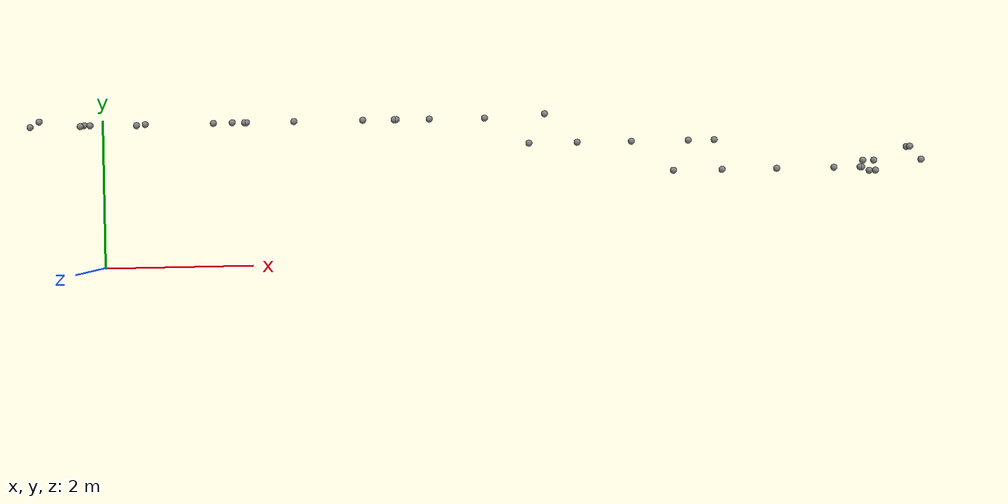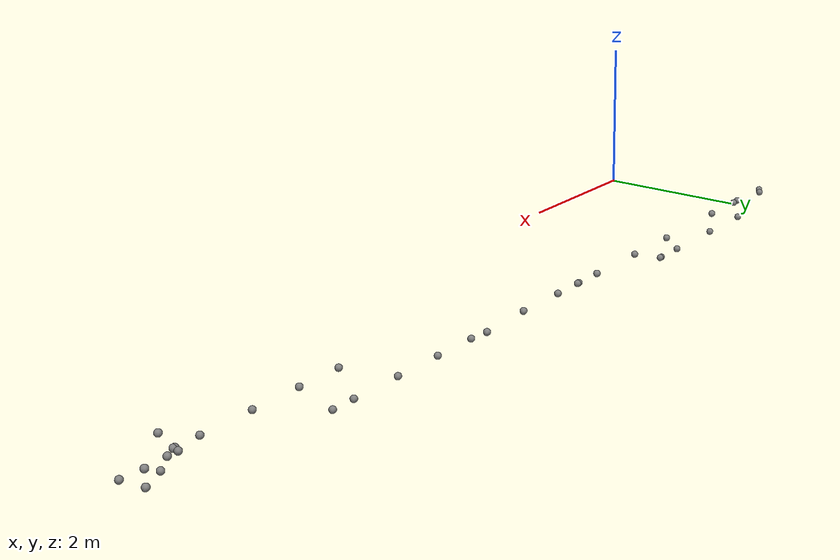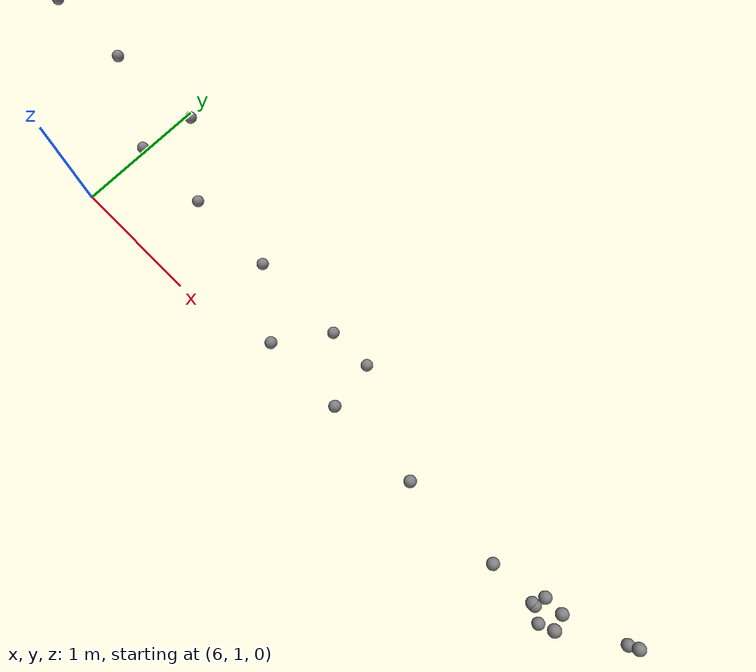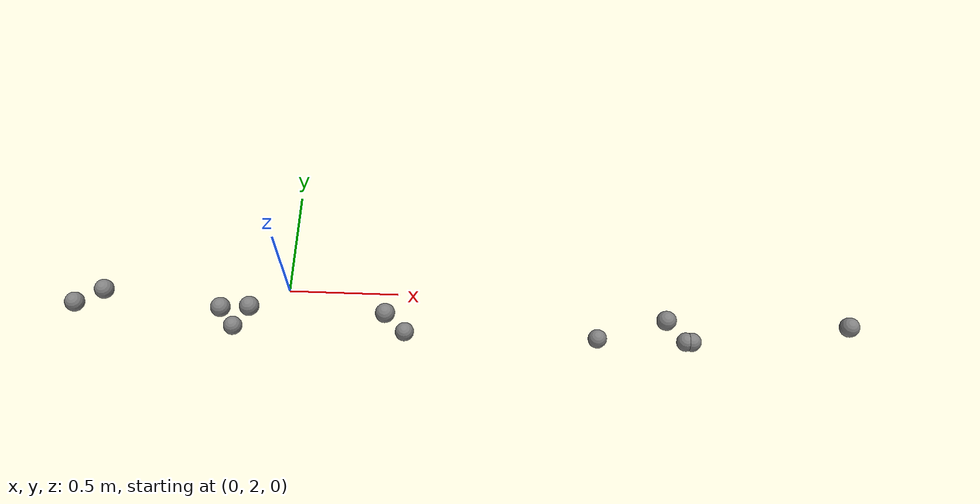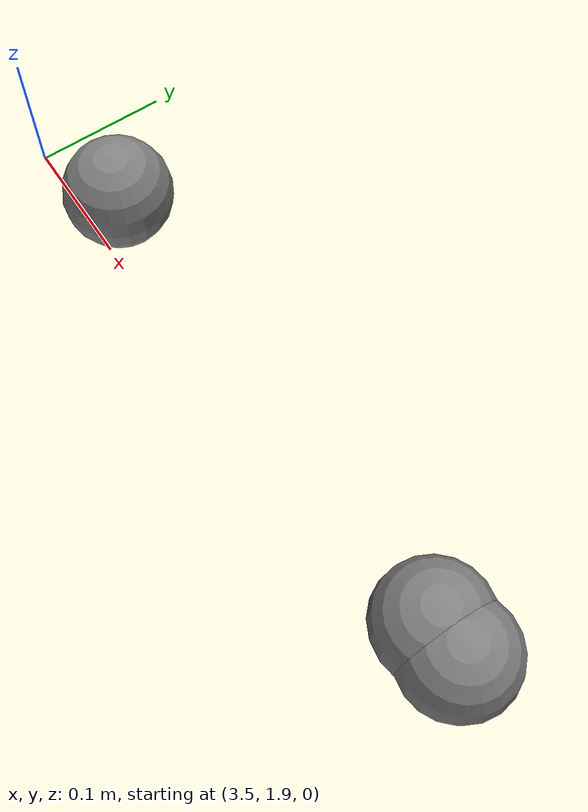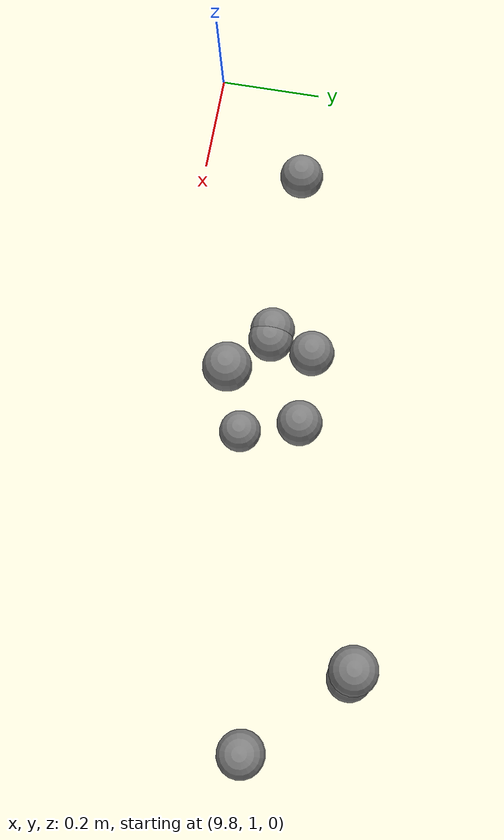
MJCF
<mujoco model="humanoid">

  <statistic extent="2" center="0 0 1"/>

  <option timestep="0.00555"/>

  <default>
    <motor ctrlrange="-1 1" ctrllimited="true"/>
    <default class="body">
      <geom type="capsule" condim="1" friction="1.0 0.05 0.05" solimp=".9 .99 .003" solref=".015 1"/>
      <joint type="hinge" damping="0.1" stiffness="5" armature=".007" limited="true" solimplimit="0 .99 .01"/>
      <site size=".04" group="3"/>
      <default class="force-torque">
        <site type="box" size=".01 .01 .02" rgba="1 0 0 1" />
      </default>
      <default class="touch">
        <site type="capsule" rgba="0 0 1 .3"/>
      </default>
    </default>
  </default>

 <worldbody><body name="Hips" pos="-0.884179 2.00128 0.08973370000000001"><geom density="982" fromto="0 0 -0.05 0 0 -0.23" name="Hips_geom" size=".045" /><site name="Hips_site" pos="0 0 -0.14" size="0.046 0.1" zaxis="0 0 1" /><body name="Bip01_Pelvis" pos="0.0 0.0 0.0"><geom density="982" fromto="0 0 -0.05 0 0 -0.23" name="Bip01_Pelvis_geom" size=".045" /><site name="Bip01_Pelvis_site" pos="0 0 -0.14" size="0.046 0.1" zaxis="0 0 1" /><body name="BN_Tail_01" pos="-0.124087 -0.0718302 0.0"><geom density="982" fromto="0 0 -0.05 0 0 -0.23" name="BN_Tail_01_geom" size=".045" /><site name="BN_Tail_01_site" pos="0 0 -0.14" size="0.046 0.1" zaxis="0 0 1" /><body name="BN_Tail_02" pos="0.682381 0.0 0.0"><geom density="982" fromto="0 0 -0.05 0 0 -0.23" name="BN_Tail_02_geom" size=".045" /><site name="BN_Tail_02_site" pos="0 0 -0.14" size="0.046 0.1" zaxis="0 0 1" /><body name="BN_Tail_03" pos="0.0 0.0 0.0"><geom density="982" fromto="0 0 -0.05 0 0 -0.23" name="BN_Tail_03_geom" size=".045" /><site name="BN_Tail_03_site" pos="0 0 -0.14" size="0.046 0.1" zaxis="0 0 1" /><body name="BN_Tail_04" pos="0.7669990000000001 0.0 0.0"><geom density="982" fromto="0 0 -0.05 0 0 -0.23" name="BN_Tail_04_geom" size=".045" /><site name="BN_Tail_04_site" pos="0 0 -0.14" size="0.046 0.1" zaxis="0 0 1" /></body><body name="Bip01_Spine" pos="0.13381200000000001 0.009601400000000001 0.00297562"><geom density="982" fromto="0 0 -0.05 0 0 -0.23" name="Bip01_Spine_geom" size=".045" /><site name="Bip01_Spine_site" pos="0 0 -0.14" size="0.046 0.1" zaxis="0 0 1" /><body name="Bip01_R_Thigh" pos="-0.130135 0.0103306 -0.24929700000000002"><geom density="982" fromto="0 0 -0.05 0 0 -0.23" name="Bip01_R_Thigh_geom" size=".045" /><site name="Bip01_R_Thigh_site" pos="0 0 -0.14" size="0.046 0.1" zaxis="0 0 1" /><body name="Bip01_R_Calf" pos="0.839601 0.0 0.0"><geom density="982" fromto="0 0 -0.05 0 0 -0.23" name="Bip01_R_Calf_geom" size=".045" /><site name="Bip01_R_Calf_site" pos="0 0 -0.14" size="0.046 0.1" zaxis="0 0 1" /><body name="Bip01_R_HorseLink" pos="0.935807 0.0 0.0"><geom density="982" fromto="0 0 -0.05 0 0 -0.23" name="Bip01_R_HorseLink_geom" size=".045" /><site name="Bip01_R_HorseLink_site" pos="0 0 -0.14" size="0.046 0.1" zaxis="0 0 1" /><body name="Bip01_R_Foot" pos="0.42781900000000006 0.0 0.0"><geom density="982" fromto="0 0 -0.05 0 0 -0.23" name="Bip01_R_Foot_geom" size=".045" /><site name="Bip01_R_Foot_site" pos="0 0 -0.14" size="0.046 0.1" zaxis="0 0 1" /><body name="Bip01_R_Toe0" pos="0.0 0.0 0.0"><geom density="982" fromto="0 0 -0.05 0 0 -0.23" name="Bip01_R_Toe0_geom" size=".045" /><site name="Bip01_R_Toe0_site" pos="0 0 -0.14" size="0.046 0.1" zaxis="0 0 1" /><body name="Bip01_R_Toe0Nub" pos="0.0282271 0.0 0.0"><geom density="982" fromto="0 0 -0.05 0 0 -0.23" name="Bip01_R_Toe0Nub_geom" size=".045" /><site name="Bip01_R_Toe0Nub_site" pos="0 0 -0.14" size="0.046 0.1" zaxis="0 0 1" /></body><body name="Bip01_L_Thigh" pos="-0.13797800000000002 -0.00398788 0.23922500000000002"><geom density="982" fromto="0 0 -0.05 0 0 -0.23" name="Bip01_L_Thigh_geom" size=".045" /><site name="Bip01_L_Thigh_site" pos="0 0 -0.14" size="0.046 0.1" zaxis="0 0 1" /><body name="Bip01_L_Calf" pos="0.839601 0.0 0.0"><geom density="982" fromto="0 0 -0.05 0 0 -0.23" name="Bip01_L_Calf_geom" size=".045" /><site name="Bip01_L_Calf_site" pos="0 0 -0.14" size="0.046 0.1" zaxis="0 0 1" /><body name="Bip01_L_HorseLink" pos="0.935808 0.0 0.0"><geom density="982" fromto="0 0 -0.05 0 0 -0.23" name="Bip01_L_HorseLink_geom" size=".045" /><site name="Bip01_L_HorseLink_site" pos="0 0 -0.14" size="0.046 0.1" zaxis="0 0 1" /><body name="Bip01_L_Foot" pos="0.42781900000000006 0.0 0.0"><geom density="982" fromto="0 0 -0.05 0 0 -0.23" name="Bip01_L_Foot_geom" size=".045" /><site name="Bip01_L_Foot_site" pos="0 0 -0.14" size="0.046 0.1" zaxis="0 0 1" /><body name="Bip01_L_Toe0" pos="0.0 0.0 0.0"><geom density="982" fromto="0 0 -0.05 0 0 -0.23" name="Bip01_L_Toe0_geom" size=".045" /><site name="Bip01_L_Toe0_site" pos="0 0 -0.14" size="0.046 0.1" zaxis="0 0 1" /><body name="Bip01_L_Toe0Nub" pos="0.0282267 0.0 0.0"><geom density="982" fromto="0 0 -0.05 0 0 -0.23" name="Bip01_L_Toe0Nub_geom" size=".045" /><site name="Bip01_L_Toe0Nub_site" pos="0 0 -0.14" size="0.046 0.1" zaxis="0 0 1" /></body><body name="Bip01_Spine1" pos="0.47781200000000007 -0.000598526 -2.03848e-06"><geom density="982" fromto="0 0 -0.05 0 0 -0.23" name="Bip01_Spine1_geom" size=".045" /><site name="Bip01_Spine1_site" pos="0 0 -0.14" size="0.046 0.1" zaxis="0 0 1" /><body name="Bip01_Spine2" pos="0.752904 -0.000557518 -8.386370000000001e-06"><geom density="982" fromto="0 0 -0.05 0 0 -0.23" name="Bip01_Spine2_geom" size=".045" /><site name="Bip01_Spine2_site" pos="0 0 -0.14" size="0.046 0.1" zaxis="0 0 1" /><body name="Bip01_Neck" pos="0.817986 0.043699800000000004 1.2707500000000002e-05"><geom density="982" fromto="0 0 -0.05 0 0 -0.23" name="Bip01_Neck_geom" size=".045" /><site name="Bip01_Neck_site" pos="0 0 -0.14" size="0.046 0.1" zaxis="0 0 1" /><body name="Bip01_R_Clavicle" pos="-0.21244000000000002 -0.391239 -0.244847"><geom density="982" fromto="0 0 -0.05 0 0 -0.23" name="Bip01_R_Clavicle_geom" size=".045" /><site name="Bip01_R_Clavicle_site" pos="0 0 -0.14" size="0.046 0.1" zaxis="0 0 1" /><body name="Bip01_R_UpperArm" pos="0.6624780000000001 0.0 0.0"><geom density="982" fromto="0 0 -0.05 0 0 -0.23" name="Bip01_R_UpperArm_geom" size=".045" /><site name="Bip01_R_UpperArm_site" pos="0 0 -0.14" size="0.046 0.1" zaxis="0 0 1" /><body name="Bip01_R_Forearm" pos="0.746098 0.0 0.0"><geom density="982" fromto="0 0 -0.05 0 0 -0.23" name="Bip01_R_Forearm_geom" size=".045" /><site name="Bip01_R_Forearm_site" pos="0 0 -0.14" size="0.046 0.1" zaxis="0 0 1" /><body name="Bip01_R_Hand" pos="0.7805430000000001 0.0 0.0"><geom density="982" fromto="0 0 -0.05 0 0 -0.23" name="Bip01_R_Hand_geom" size=".045" /><site name="Bip01_R_Hand_site" pos="0 0 -0.14" size="0.046 0.1" zaxis="0 0 1" /><body name="Bip01_R_Finger0" pos="0.0 0.0 0.0"><geom density="982" fromto="0 0 -0.05 0 0 -0.23" name="Bip01_R_Finger0_geom" size=".045" /><site name="Bip01_R_Finger0_site" pos="0 0 -0.14" size="0.046 0.1" zaxis="0 0 1" /><body name="Bip01_R_Finger0Nub" pos="0.357154 0.0 0.0"><geom density="982" fromto="0 0 -0.05 0 0 -0.23" name="Bip01_R_Finger0Nub_geom" size=".045" /><site name="Bip01_R_Finger0Nub_site" pos="0 0 -0.14" size="0.046 0.1" zaxis="0 0 1" /></body><body name="Bip01_L_Clavicle" pos="-0.228998 -0.40991900000000003 0.19407200000000002"><geom density="982" fromto="0 0 -0.05 0 0 -0.23" name="Bip01_L_Clavicle_geom" size=".045" /><site name="Bip01_L_Clavicle_site" pos="0 0 -0.14" size="0.046 0.1" zaxis="0 0 1" /><body name="Bip01_L_UpperArm" pos="0.6624780000000001 0.0 0.0"><geom density="982" fromto="0 0 -0.05 0 0 -0.23" name="Bip01_L_UpperArm_geom" size=".045" /><site name="Bip01_L_UpperArm_site" pos="0 0 -0.14" size="0.046 0.1" zaxis="0 0 1" /><body name="Bip01_L_Forearm" pos="0.746098 0.0 0.0"><geom density="982" fromto="0 0 -0.05 0 0 -0.23" name="Bip01_L_Forearm_geom" size=".045" /><site name="Bip01_L_Forearm_site" pos="0 0 -0.14" size="0.046 0.1" zaxis="0 0 1" /><body name="Bip01_L_Hand" pos="0.7805430000000001 0.0 0.0"><geom density="982" fromto="0 0 -0.05 0 0 -0.23" name="Bip01_L_Hand_geom" size=".045" /><site name="Bip01_L_Hand_site" pos="0 0 -0.14" size="0.046 0.1" zaxis="0 0 1" /><body name="Bip01_L_Finger0" pos="0.0 0.0 0.0"><geom density="982" fromto="0 0 -0.05 0 0 -0.23" name="Bip01_L_Finger0_geom" size=".045" /><site name="Bip01_L_Finger0_site" pos="0 0 -0.14" size="0.046 0.1" zaxis="0 0 1" /><body name="Bip01_L_Finger0Nub" pos="0.35715300000000005 0.0 0.0"><geom density="982" fromto="0 0 -0.05 0 0 -0.23" name="Bip01_L_Finger0Nub_geom" size=".045" /><site name="Bip01_L_Finger0Nub_site" pos="0 0 -0.14" size="0.046 0.1" zaxis="0 0 1" /></body><body name="Bip01_Neck1" pos="0.378076 -0.00028548200000000004 1.5258800000000002e-06"><geom density="982" fromto="0 0 -0.05 0 0 -0.23" name="Bip01_Neck1_geom" size=".045" /><site name="Bip01_Neck1_site" pos="0 0 -0.14" size="0.046 0.1" zaxis="0 0 1" /><body name="Bip01_Head" pos="0.0 0.0 0.0"><geom density="982" fromto="0 0 -0.05 0 0 -0.23" name="Bip01_Head_geom" size=".045" /><site name="Bip01_Head_site" pos="0 0 -0.14" size="0.046 0.1" zaxis="0 0 1" /><body name="BN_Beard_L" pos="0.6363810000000001 0.26665 0.1018"><geom density="982" fromto="0 0 -0.05 0 0 -0.23" name="BN_Beard_L_geom" size=".045" /><site name="BN_Beard_L_site" pos="0 0 -0.14" size="0.046 0.1" zaxis="0 0 1" /></body><body name="BN_Beard_R" pos="0.6363800000000001 0.26665 -0.10180600000000001"><geom density="982" fromto="0 0 -0.05 0 0 -0.23" name="BN_Beard_R_geom" size=".045" /><site name="BN_Beard_R_site" pos="0 0 -0.14" size="0.046 0.1" zaxis="0 0 1" /></body><body name="BN_Mouth" pos="0.0165208 0.0881832 -2.79663e-06"><geom density="982" fromto="0 0 -0.05 0 0 -0.23" name="BN_Mouth_geom" size=".045" /><site name="BN_Mouth_site" pos="0 0 -0.14" size="0.046 0.1" zaxis="0 0 1" /><body name="BN_Thouge_01" pos="0.0 0.0 0.0"><geom density="982" fromto="0 0 -0.05 0 0 -0.23" name="BN_Thouge_01_geom" size=".045" /><site name="BN_Thouge_01_site" pos="0 0 -0.14" size="0.046 0.1" zaxis="0 0 1" /><body name="BN_Thouge_02" pos="0.150253 0.0 0.0"><geom density="982" fromto="0 0 -0.05 0 0 -0.23" name="BN_Thouge_02_geom" size=".045" /><site name="BN_Thouge_02_site" pos="0 0 -0.14" size="0.046 0.1" zaxis="0 0 1" /></body><body name="BN_Ear_L" pos="0.12795399999999998 -0.137165 0.210918"><geom density="982" fromto="0 0 -0.05 0 0 -0.23" name="BN_Ear_L_geom" size=".045" /><site name="BN_Ear_L_site" pos="0 0 -0.14" size="0.046 0.1" zaxis="0 0 1" /></body><body name="BN_Ear_R" pos="0.127953 -0.137164 -0.21093000000000003"><geom density="982" fromto="0 0 -0.05 0 0 -0.23" name="BN_Ear_R_geom" size=".045" /><site name="BN_Ear_R_site" pos="0 0 -0.14" size="0.046 0.1" zaxis="0 0 1" /></body><body name="Bip01_HeadNub" pos="0.7945070000000001 0.0 0.0"><geom density="982" fromto="0 0 -0.05 0 0 -0.23" name="Bip01_HeadNub_geom" size=".045" /><site name="Bip01_HeadNub_site" pos="0 0 -0.14" size="0.046 0.1" zaxis="0 0 1" /></body></body></body></body></body></body></body></body></body></body></body></body></body></body></body></body></body></body></body></body></body></body></body></body></body></body></body></body></body></body></body></body></body></body></worldbody>

  <actuator>
  </actuator>

  <sensor>
  </sensor>

</mujoco>
